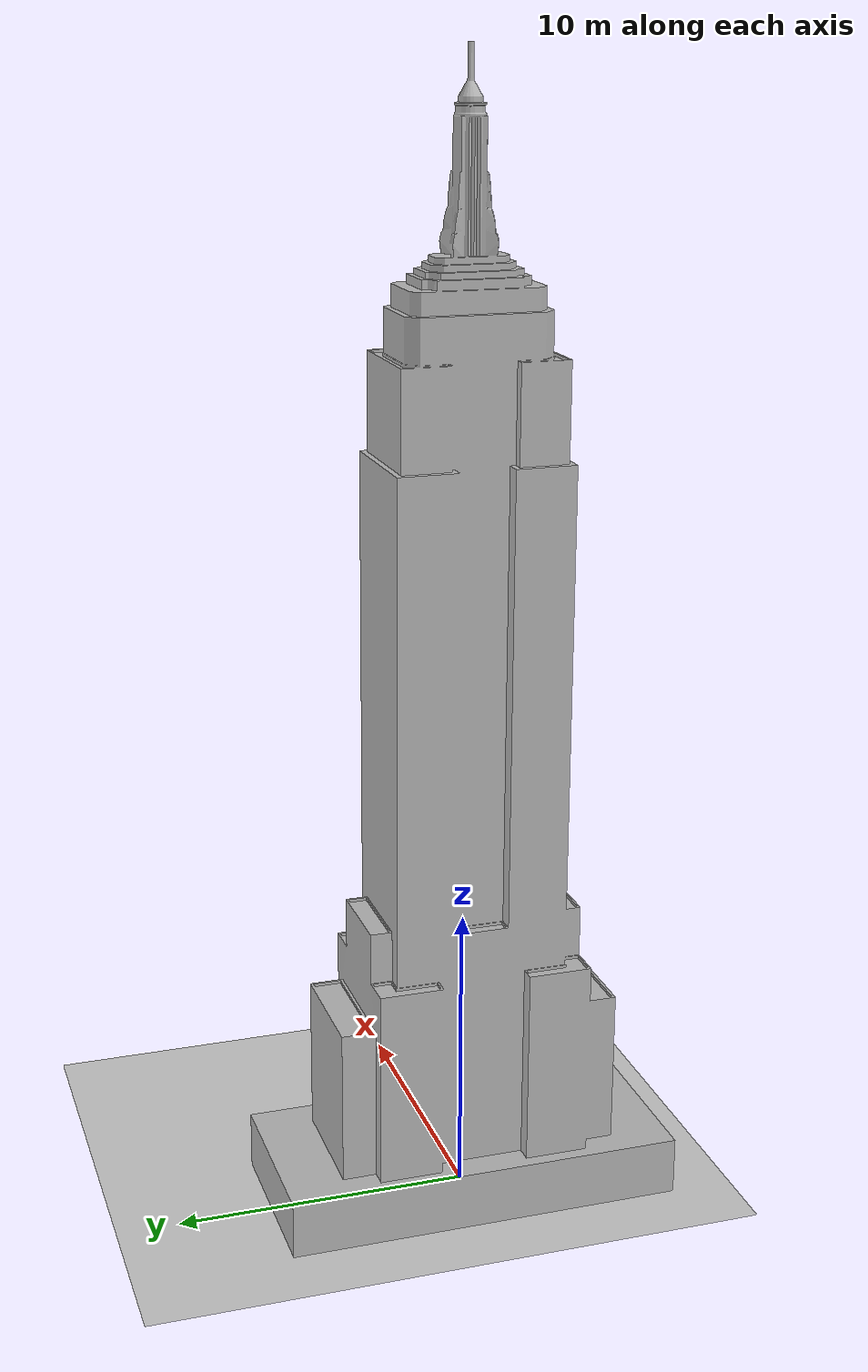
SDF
<sdf version='1.6'>
  <world name='default'>
    <include>
      <uri>model://ground_plane</uri>
    </include>
    <include>
      <uri>model://sun</uri>
    </include>
    <model name='airplane'>
      <static>1</static>
      <link name='airplane'>
        <pose>0 0 0 0 0 0</pose>
        <visual name='visual'>
          <pose>0 0 0 0 0 1.5707963</pose>
          <geometry>
            <mesh>
              <uri>/home/yufeng/catkin_ws/src/scene_scanning/ss_gazebo/media/models/building_1/10068_empire_state_building_v1_L3.obj</uri>
              <scale>0.001 0.001 0.001</scale>
            </mesh>
          </geometry>
          <material>
            <lighting>1</lighting>
            <script>
              <uri>/home/yufeng/catkin_ws/src/scene_scanning/ss_gazebo/media/models/building_1/10068_empire_state_building_v1_L3.mtl</uri>
            </script>
            <shader type='pixel'/>
          </material>
          <transparency>0</transparency>
          <cast_shadows>0</cast_shadows>
        </visual>
        <collision name='collision'>
          <laser_retro>0</laser_retro>
          <max_contacts>10</max_contacts>
          <pose frame=''>0 0 0 0 0 -1.5707963</pose>
          <geometry>
            <mesh>
              <uri>/home/yufeng/catkin_ws/src/scene_scanning/ss_gazebo/media/models/building_1/10068_empire_state_building_v1_L3.obj</uri>
              <scale>0.001 0.001 0.001</scale>
            </mesh>
          </geometry>
          <surface>
            <friction>
              <ode>
                <mu>1</mu>
                <mu2>1</mu2>
                <fdir1>0 0 0</fdir1>
                <slip1>0</slip1>
                <slip2>0</slip2>
              </ode>
              <torsional>
                <coefficient>1</coefficient>
                <patch_radius>0</patch_radius>
                <surface_radius>0</surface_radius>
                <use_patch_radius>1</use_patch_radius>
                <ode>
                  <slip>0</slip>
                </ode>
              </torsional>
            </friction>
            <bounce>
              <restitution_coefficient>0</restitution_coefficient>
              <threshold>1e+06</threshold>
            </bounce>
            <contact>
              <collide_without_contact>0</collide_without_contact>
              <collide_without_contact_bitmask>1</collide_without_contact_bitmask>
              <collide_bitmask>1</collide_bitmask>
              <ode>
                <soft_cfm>0</soft_cfm>
                <soft_erp>0.2</soft_erp>
                <kp>1e+13</kp>
                <kd>1</kd>
                <max_vel>0.01</max_vel>
                <min_depth>0</min_depth>
              </ode>
              <bullet>
                <split_impulse>1</split_impulse>
                <split_impulse_penetration_threshold>-0.01</split_impulse_penetration_threshold>
                <soft_cfm>0</soft_cfm>
                <soft_erp>0.2</soft_erp>
                <kp>1e+13</kp>
                <kd>1</kd>
              </bullet>
            </contact>
          </surface>
        </collision>
      </link>
    </model>
    <gui fullscreen='0'>
      <camera name='user_camera'>
        <pose frame=''>42.0829 57.4741 33.0707 0 0.199643 -2.231</pose>
        <view_controller>orbit</view_controller>
        <projection_type>perspective</projection_type>
      </camera>
   </gui>
   <physics type="ode">
     <max_step_size>0.001</max_step_size>
     <real_time_factor>1</real_time_factor>
     <real_time_update_rate>1000</real_time_update_rate>
     <ode>
       <solver>
         <type>quick</type>
         <iters>1000</iters>
         <sor>1.3</sor>
       </solver>
       <constraints>
         <cfm>0</cfm>
         <erp>0.2</erp>
         <contact_max_correcting_vel>100</contact_max_correcting_vel>
         <contact_surface_layer>0.001</contact_surface_layer>
       </constraints>
     </ode>
   </physics>
  </world>
</sdf>
